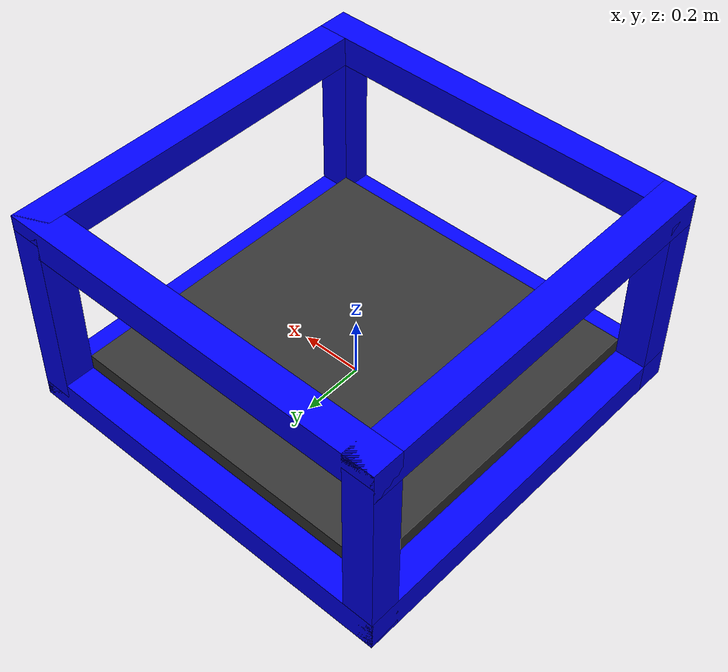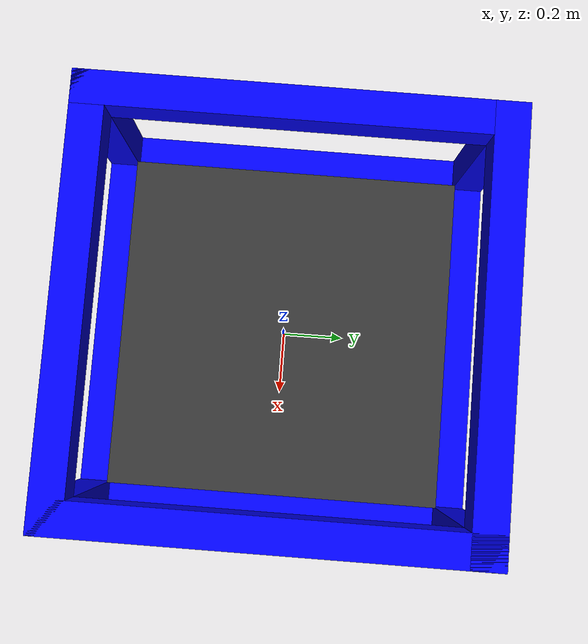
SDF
<?xml version="1.0"?>
<sdf version="1.6">
 <!-- Working reference SDF file, moved to URDF with ROS CTRL -->
  <model name="drone_box">
    <static>false</static>

    <!-- Top beams -->
    <link name="top_beam_front">
      <pose>0 0.595 0.60 0 0 0</pose>

      <gravity>0</gravity>
      <kinematic>true</kinematic>

      <inertial>
        <mass>5.0</mass>
        <inertia>
          <ixx>0.1</ixx>
          <iyy>0.1</iyy>
          <izz>0.1</izz>
          <ixy>0.0</ixy>
          <ixz>0.0</ixz>
          <iyz>0.0</iyz>
        </inertia>
      </inertial>

      <collision name="collision">
        <geometry>
          <box><size>1.29 0.10 0.10</size></box>
        </geometry>
      </collision>
      <visual name="visual">
        <geometry>
          <box><size>1.29 0.10 0.10</size></box>
        </geometry>
        <material>
          <ambient>0 0 1 1</ambient>
        </material>
      </visual>
    </link>

    <link name="top_beam_back">
      <pose>0 -0.595 0.60 0 0 0</pose>

      <gravity>0</gravity>
      <kinematic>true</kinematic>

      <inertial>
        <mass>5.0</mass>
        <inertia>
          <ixx>0.1</ixx>
          <iyy>0.1</iyy>
          <izz>0.1</izz>
          <ixy>0.0</ixy>
          <ixz>0.0</ixz>
          <iyz>0.0</iyz>
        </inertia>
      </inertial>

      <collision name="collision">
        <geometry>
          <box><size>1.29 0.10 0.10</size></box>
        </geometry>
      </collision>
      <visual name="visual">
        <geometry>
          <box><size>1.29 0.10 0.10</size></box>
        </geometry>
        <material>
          <ambient>0 0 1 1</ambient>
        </material>
      </visual>
    </link>

    <link name="top_beam_left">
      <pose>0.595 0 0.60 0 0 0</pose>

      <gravity>0</gravity>
      <kinematic>true</kinematic>

      <inertial>
        <mass>5.0</mass>
        <inertia>
          <ixx>0.1</ixx>
          <iyy>0.1</iyy>
          <izz>0.1</izz>
          <ixy>0.0</ixy>
          <ixz>0.0</ixz>
          <iyz>0.0</iyz>
        </inertia>
      </inertial>

      <collision name="collision">
        <geometry>
          <box><size>0.10 1.29 0.10</size></box>
        </geometry>
      </collision>
      <visual name="visual">
        <geometry>
          <box><size>0.10 1.29 0.10</size></box>
        </geometry>
        <material>
          <ambient>0 0 1 1</ambient>
        </material>
      </visual>
    </link>

    <link name="top_beam_right">
      <pose>-0.595 0 0.60 0 0 0</pose>

      <gravity>0</gravity>
      <kinematic>true</kinematic>

      <inertial>
        <mass>5.0</mass>
        <inertia>
          <ixx>0.1</ixx>
          <iyy>0.1</iyy>
          <izz>0.1</izz>
          <ixy>0.0</ixy>
          <ixz>0.0</ixz>
          <iyz>0.0</iyz>
        </inertia>
      </inertial>

      <collision name="collision">
        <geometry>
          <box><size>0.10 1.29 0.10</size></box>
        </geometry>
      </collision>
      <visual name="visual">
        <geometry>
          <box><size>0.10 1.29 0.10</size></box>
        </geometry>
        <material>
          <ambient>0 0 1 1</ambient>
        </material>
      </visual>
    </link>

    <!-- Bottom beams -->
    <link name="bottom_beam_front">
      <pose>0 0.595 0.0 0 0 0</pose>

      <gravity>0</gravity>
      <kinematic>true</kinematic>

      <inertial>
        <mass>5.0</mass>
        <inertia>
          <ixx>0.1</ixx>
          <iyy>0.1</iyy>
          <izz>0.1</izz>
          <ixy>0.0</ixy>
          <ixz>0.0</ixz>
          <iyz>0.0</iyz>
        </inertia>
      </inertial>

      <collision name="collision">
        <geometry>
          <box><size>1.29 0.10 0.10</size></box>
        </geometry>
      </collision>
      <visual name="visual">
        <geometry>
          <box><size>1.29 0.10 0.10</size></box>
        </geometry>
        <material>
          <ambient>0 0 1 1</ambient>
        </material>
      </visual>
    </link>

    <link name="bottom_beam_back">
      <pose>0 -0.595 0.0 0 0 0</pose>

      <gravity>0</gravity>
      <kinematic>true</kinematic>

      <inertial>
        <mass>5.0</mass>
        <inertia>
          <ixx>0.1</ixx>
          <iyy>0.1</iyy>
          <izz>0.1</izz>
          <ixy>0.0</ixy>
          <ixz>0.0</ixz>
          <iyz>0.0</iyz>
        </inertia>
      </inertial>

      <collision name="collision">
        <geometry>
          <box><size>1.29 0.10 0.10</size></box>
        </geometry>
      </collision>
      <visual name="visual">
        <geometry>
          <box><size>1.29 0.10 0.10</size></box>
        </geometry>
        <material>
          <ambient>0 0 1 1</ambient>
        </material>
      </visual>
    </link>

    <link name="bottom_beam_left">
      <pose>0.595 0 0.0 0 0 0</pose>

      <gravity>0</gravity>
      <kinematic>true</kinematic>

      <inertial>
        <mass>5.0</mass>
        <inertia>
          <ixx>0.1</ixx>
          <iyy>0.1</iyy>
          <izz>0.1</izz>
          <ixy>0.0</ixy>
          <ixz>0.0</ixz>
          <iyz>0.0</iyz>
        </inertia>
      </inertial>

      <collision name="collision">
        <geometry>
          <box><size>0.10 1.29 0.10</size></box>
        </geometry>
      </collision>
      <visual name="visual">
        <geometry>
          <box><size>0.10 1.29 0.10</size></box>
        </geometry>
        <material>
          <ambient>0 0 1 1</ambient>
        </material>
      </visual>
    </link>

    <link name="bottom_beam_right">
      <pose>-0.595 0 0.0 0 0 0</pose>

      <gravity>0</gravity>
      <kinematic>true</kinematic>

      <inertial>
        <mass>5.0</mass>
        <inertia>
          <ixx>0.1</ixx>
          <iyy>0.1</iyy>
          <izz>0.1</izz>
          <ixy>0.0</ixy>
          <ixz>0.0</ixz>
          <iyz>0.0</iyz>
        </inertia>
      </inertial>

      <collision name="collision">
        <geometry>
          <box><size>0.10 1.29 0.10</size></box>
        </geometry>
      </collision>
      <visual name="visual">
        <geometry>
          <box><size>0.10 1.29 0.10</size></box>
        </geometry>
        <material>
          <ambient>0 0 1 1</ambient>
        </material>
      </visual>
    </link>

    <!-- Vertical beams -->
    <link name="vertical_fl">
      <pose>0.595 0.595 0.30 0 0 0</pose>

      <gravity>0</gravity>
      <kinematic>true</kinematic>

      <inertial>
        <mass>5.0</mass>
        <inertia>
          <ixx>0.1</ixx>
          <iyy>0.1</iyy>
          <izz>0.1</izz>
          <ixy>0.0</ixy>
          <ixz>0.0</ixz>
          <iyz>0.0</iyz>
        </inertia>
      </inertial>

      <collision name="collision">
        <geometry>
          <box><size>0.10 0.10 0.60</size></box>
        </geometry>
      </collision>
      <visual name="visual">
        <geometry>
          <box><size>0.10 0.10 0.60</size></box>
        </geometry>
        <material>
          <ambient>0 0 1 1</ambient>
        </material>
      </visual>
    </link>

    <link name="vertical_fr">
      <pose>-0.595 0.595 0.30 0 0 0</pose>

      <gravity>0</gravity>
      <kinematic>true</kinematic>

      <inertial>
        <mass>5.0</mass>
        <inertia>
          <ixx>0.1</ixx>
          <iyy>0.1</iyy>
          <izz>0.1</izz>
          <ixy>0.0</ixy>
          <ixz>0.0</ixz>
          <iyz>0.0</iyz>
        </inertia>
      </inertial>

      <collision name="collision">
        <geometry>
          <box><size>0.10 0.10 0.60</size></box>
        </geometry>
      </collision>
      <visual name="visual">
        <geometry>
          <box><size>0.10 0.10 0.60</size></box>
        </geometry>
        <material>
          <ambient>0 0 1 1</ambient>
        </material>
      </visual>
    </link>

    <link name="vertical_bl">
      <pose>0.595 -0.595 0.30 0 0 0</pose>

      <gravity>0</gravity>
      <kinematic>true</kinematic>

      <inertial>
        <mass>5.0</mass>
        <inertia>
          <ixx>0.1</ixx>
          <iyy>0.1</iyy>
          <izz>0.1</izz>
          <ixy>0.0</ixy>
          <ixz>0.0</ixz>
          <iyz>0.0</iyz>
        </inertia>
      </inertial>

      <collision name="collision">
        <geometry>
          <box><size>0.10 0.10 0.60</size></box>
        </geometry>
      </collision>
      <visual name="visual">
        <geometry>
          <box><size>0.10 0.10 0.60</size></box>
        </geometry>
        <material>
          <ambient>0 0 1 1</ambient>
        </material>
      </visual>
    </link>

    <link name="vertical_br">
      <pose>-0.595 -0.595 0.30 0 0 0</pose>

      <gravity>0</gravity>
      <kinematic>true</kinematic>

      <inertial>
        <mass>5.0</mass>
        <inertia>
          <ixx>0.1</ixx>
          <iyy>0.1</iyy>
          <izz>0.1</izz>
          <ixy>0.0</ixy>
          <ixz>0.0</ixz>
          <iyz>0.0</iyz>
        </inertia>
      </inertial>

      <collision name="collision">
        <geometry>
          <box><size>0.10 0.10 0.60</size></box>
        </geometry>
      </collision>
      <visual name="visual">
        <geometry>
          <box><size>0.10 0.10 0.60</size></box>
        </geometry>
        <material>
          <ambient>0 0 1 1</ambient>
        </material>
      </visual>
    </link>

    <!-- Sliding platform -->
    <link name="sliding_platform">
      <pose>0 0 0.075 0 0 0</pose>

      <gravity>1</gravity>
      <kinematic>false</kinematic>

      <inertial>
        <mass>5.0</mass>
        <inertia>
          <ixx>0.1</ixx>
          <iyy>0.1</iyy>
          <izz>0.1</izz>
          <ixy>0.0</ixy>
          <ixz>0.0</ixz>
          <iyz>0.0</iyz>
        </inertia>
      </inertial>

      <collision name="collision">
        <geometry>
          <box><size>1.09 1.09 0.02</size></box>
        </geometry>
      </collision>

      <visual name="visual">
        <geometry>
          <box><size>1.09 1.09 0.05</size></box>
        </geometry>
        <material>
          <ambient>0.2 0.2 0.2 1</ambient>
        </material>
      </visual>
    </link>

    <!-- Prismatic joint for sliding tray (slides along +Y) -->
    <joint name="slide_joint" type="prismatic">
      <parent>bottom_beam_back</parent>
      <child>sliding_platform</child>
      <axis>
        <xyz>1 0 0</xyz>
        <limit>
          <lower>0</lower>
          <upper>0.93</upper>
        </limit>
      </axis>
    </joint>

  </model>
</sdf>
